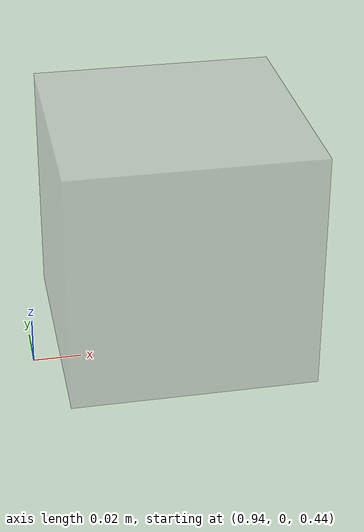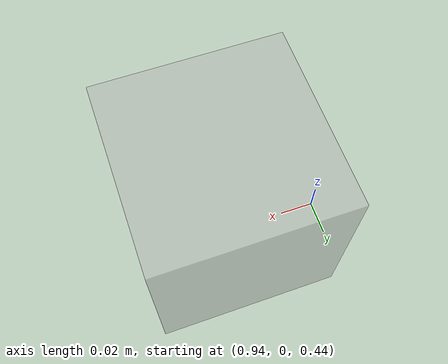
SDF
<?xml version="1.0" ?>
<sdf version="1.5">
  <model name="yarp_camera">
  <pose>1.0 0.0 0.5 0 0 3.14</pose>
  <static>false</static>
    <link name="link">
    <gravity>false</gravity>
      <visual name="visual">
        <geometry>
          <box>
            <size>0.1 0.1 0.1</size>
          </box>
        </geometry>
        <transparency>0.6</transparency>
      </visual>
      <sensor name="yarp_camera_sensor" type="camera">
        <camera>
          <horizontal_fov>1.047</horizontal_fov>
          <image>
            <width>1920</width>
            <height>1080</height>
          </image>
          <clip>
            <near>0.1</near>
            <far>100</far>
          </clip>
        </camera>
        <always_on>1</always_on>
        <update_rate>30</update_rate>
        <visualize>true</visualize>
        <plugin name="yarp_camera_control" filename="libyarp_camera_control.so"/>
      </sensor>
      <kinematic>0</kinematic>
    </link>
    <plugin name="yarp_model_move" filename="libyarp_model_move.so"/>
  </model>
</sdf>
